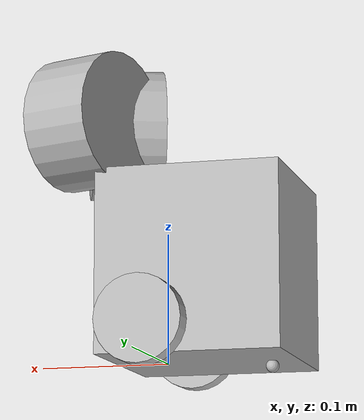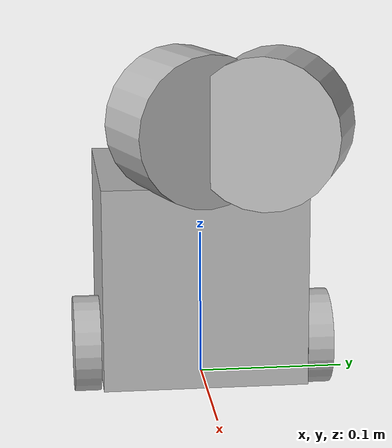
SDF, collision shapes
<?xml version="1.0" ?>
<sdf version="1.5">
  <model name="deliverybot">
    <pose>0.0 0.0 0.0 0.0 0.0 0.0</pose>

    <link name="base_footprint"/>

    <link name="base_link">

      <inertial>
        <pose>-0.032 0 0.070 0 0 0</pose>
        <inertia>
          <ixx>7.2397393e-01</ixx>
          <ixy>4.686399e-10</ixy>
          <ixz>-1.09525703e-08</ixz>
          <iyy>7.2397393e-01</iyy>
          <iyz>2.8582649e-09</iyz>
          <izz>6.53050163e-01</izz>
        </inertia>
        <mass>8.2573504e-01</mass>
      </inertial>

      <collision name="base_collision">
        <pose>-0.032 0 0.070 0 0 0</pose>
        <geometry>
          <box>
            <size>0.140 0.140 0.140</size>
          </box>
        </geometry>
      </collision>

      <visual name="base_visual">
        <pose>-0.032 0 0 0 0 0</pose>
        <geometry>
          <mesh>
            <uri>model://turtlebot3_common/meshes/burger_base.dae</uri>
            <scale>0.001 0.001 0.001</scale>
          </mesh>
        </geometry>
      </visual>
    </link>

    <link name="cam_left_link">
      <inertial>
        <pose>0.048 0.042 0.182 0.349 1.57 0</pose>
        <inertia>
          <ixx>0.001</ixx>
          <ixy>0.000</ixy>
          <ixz>0.000</ixz>
          <iyy>0.001</iyy>
          <iyz>0.000</iyz>
          <izz>0.001</izz>
        </inertia>
        <mass>0.114</mass>
      </inertial>
      <collision name="cam_left_collision">
        <pose>0.048 0.042 0.182 0.349 1.57 0</pose>
        <geometry>
          <cylinder>
            <radius>0.0508</radius>
            <length>0.055</length>
          </cylinder>
        </geometry>
      </collision>
      <visual name="cam_left_visual">
        <pose>0.036 0.03 0.182 -1.57 0 -2.3038</pose>
        <geometry>
          <mesh>
            <uri>model://deliverybot/d435.dae</uri>
            <scale>1 1 1</scale>
          </mesh>
        </geometry>
      </visual>
      <sensor name='camera_left' type='depth'>
        <pose>0.036 0.03 0.182 0 0 -0.733</pose>
        <camera name='cam_left'>
          <horizontal_fov>1.48702</horizontal_fov>
          <image>
            <width>640</width>
            <height>480</height>
          </image>
          <clip>
            <near>0.1</near>
            <far>100</far>
          </clip>
          <noise>
            <type>gaussian</type>
            <mean>0</mean>
            <stddev>0.1</stddev>
          </noise>
        </camera>
        <always_on>1</always_on>
        <update_rate>30</update_rate>
        <visualize>0</visualize>
        <plugin name="cam_left_controller" filename="libgazebo_ros_camera.so">
          <hack_baseline>0.07</hack_baseline>
          <frame_name>cam_left_link</frame_name>
        </plugin>
      </sensor>
    </link>

    <link name="cam_right_link">
      <inertial>
        <pose>0.036 -0.009 0.182 -0.3491 1.57 0</pose>
        <inertia>
          <ixx>0.001</ixx>
          <ixy>0.000</ixy>
          <ixz>0.000</ixz>
          <iyy>0.001</iyy>
          <iyz>0.000</iyz>
          <izz>0.001</izz>
        </inertia>
        <mass>0.114</mass>
      </inertial>
      <collision name="cam_right_collision">
        <pose>0.036 -0.009 0.182 -0.3491 1.57 0</pose>
        <geometry>
          <cylinder>
            <radius>0.0508</radius>
            <length>0.055</length>
          </cylinder>
        </geometry>
      </collision>
      <visual name="cam_right_visual">
        <pose>0.036 -0.03 0.182 -1.57 0 -0.8378</pose>
        <geometry>
          <mesh>
            <uri>model://deliverybot/d435.dae</uri>
            <scale>1 1 1</scale>
          </mesh>
        </geometry>
      </visual>
      <sensor name='camera_right' type='depth'>
        <pose>0.036 -0.03 0.182 0 0 0.733</pose>
        <camera name='cam_right'>
          <horizontal_fov>1.48702</horizontal_fov>
          <image>
            <width>640</width>
            <height>480</height>
          </image>
          <clip>
            <near>0.1</near>
            <far>100</far>
          </clip>
          <noise>
            <type>gaussian</type>
            <mean>0</mean>
            <stddev>0.1</stddev>
          </noise>
        </camera>
        <always_on>1</always_on>
        <update_rate>30</update_rate>
        <visualize>0</visualize>
        <plugin name="cam_right_controller" filename="libgazebo_ros_camera.so">
          <hack_baseline>0.07</hack_baseline>
          <frame_name>cam_right_link</frame_name>
        </plugin>
      </sensor>
    </link>

    <link name="wheel_left_link">

      <inertial>
        <pose>0 0.08 0.023 -1.57 0 0</pose>
        <inertia>
          <ixx>1.8158194e-03</ixx>
          <ixy>-9.3392e-12</ixy>
          <ixz>1.04909e-11</ixz>
          <iyy>3.2922126e-03</iyy>
          <iyz>5.75694e-11</iyz>
          <izz>1.8158194e-03</izz>
        </inertia>
        <mass>2.8498940e-02</mass>
      </inertial>

      <collision name="wheel_left_collision">
        <pose>0 0.08 0.023 -1.57 0 0</pose>
        <geometry>
          <cylinder>
            <radius>0.033</radius>
            <length>0.018</length>
          </cylinder>
        </geometry>
        <surface>
          <!-- This friction pamareter don't contain reliable data!! -->
          <friction>
            <ode>
              <mu>100000.0</mu>
              <mu2>100000.0</mu2>
              <fdir1>0 0 0</fdir1>
              <slip1>0.0</slip1>
              <slip2>0.0</slip2>
            </ode>
          </friction>
          <contact>
            <ode>
              <soft_cfm>0</soft_cfm>
              <soft_erp>0.2</soft_erp>
              <kp>1e+5</kp>
              <kd>1</kd>
              <max_vel>0.01</max_vel>
              <min_depth>0.001</min_depth>
            </ode>
          </contact>
        </surface>
      </collision>

      <visual name="wheel_left_visual">
        <pose>0 0.08 0.023 0 0 0</pose>
        <geometry>
          <mesh>
            <uri>model://turtlebot3_common/meshes/tire.dae</uri>
            <scale>0.001 0.001 0.001</scale>
          </mesh>
        </geometry>
      </visual>
    </link>

    <link name="wheel_right_link">

      <inertial>
        <pose>0.0 -0.08 0.023 -1.57 0 0</pose>
        <inertia>
          <ixx>1.8158194e-03</ixx>
          <ixy>-9.3392e-12</ixy>
          <ixz>1.04909e-11</ixz>
          <iyy>3.2922126e-03</iyy>
          <iyz>5.75694e-11</iyz>
          <izz>1.8158194e-03</izz>
        </inertia>
        <mass>2.8498940e-02</mass>
      </inertial>

      <collision name="wheel_right_collision">
        <pose>0.0 -0.08 0.023 -1.57 0 0</pose>
        <geometry>
          <cylinder>
            <radius>0.033</radius>
            <length>0.018</length>
          </cylinder>
        </geometry>
        <surface>
          <!-- This friction pamareter don't contain reliable data!! -->
          <friction>
            <ode>
              <mu>100000.0</mu>
              <mu2>100000.0</mu2>
              <fdir1>0 0 0</fdir1>
              <slip1>0.0</slip1>
              <slip2>0.0</slip2>
            </ode>
          </friction>
          <contact>
            <ode>
              <soft_cfm>0</soft_cfm>
              <soft_erp>0.2</soft_erp>
              <kp>1e+5</kp>
              <kd>1</kd>
              <max_vel>0.01</max_vel>
              <min_depth>0.001</min_depth>
            </ode>
          </contact>
        </surface>
      </collision>

      <visual name="wheel_right_visual">
        <pose>0.0 -0.08 0.023 0 0 0</pose>
        <geometry>
          <mesh>
            <uri>model://turtlebot3_common/meshes/tire.dae</uri>
            <scale>0.001 0.001 0.001</scale>
          </mesh>
        </geometry>
      </visual>
    </link>

    <link name='caster_back_link'>
      <pose>-0.081 0 -0.004 -1.57 0 0</pose>
      <inertial>
        <mass>0.005</mass>
        <inertia>
          <ixx>0.001</ixx>
          <ixy>0.000</ixy>
          <ixz>0.000</ixz>
          <iyy>0.001</iyy>
          <iyz>0.000</iyz>
          <izz>0.001</izz>
        </inertia>
      </inertial>
      <collision name='collision'>
        <geometry>
          <sphere>
            <radius>0.005000</radius>
          </sphere>
        </geometry>
        <surface>
          <contact>
            <ode>
              <soft_cfm>0</soft_cfm>
              <soft_erp>0.2</soft_erp>
              <kp>1e+5</kp>
              <kd>1</kd>
              <max_vel>0.01</max_vel>
              <min_depth>0.001</min_depth>
            </ode>
          </contact>
        </surface>
      </collision>
    </link>

    <joint name="base_joint" type="fixed">
      <parent>base_footprint</parent>
      <child>base_link</child>
      <pose>0.0 0.0 0.010 0 0 0</pose>
    </joint>

    <joint name="wheel_left_joint" type="revolute">
      <parent>base_link</parent>
      <child>wheel_left_link</child>
      <pose>0.0 0.08 0.023 -1.57 0 0</pose>
      <axis>
        <xyz>0 0 1</xyz>
      </axis>
    </joint>

    <joint name="wheel_right_joint" type="revolute">
      <parent>base_link</parent>
      <child>wheel_right_link</child>
      <pose>0.0 -0.08 0.023 -1.57 0 0</pose>
      <axis>
        <xyz>0 0 1</xyz>
      </axis>
    </joint>

    <joint name='caster_back_joint' type='ball'>
      <parent>base_link</parent>
      <child>caster_back_link</child>
    </joint>

  <joint name="cam_left_joint" type="fixed">
    <parent>base_link</parent>
    <child>cam_left_link</child>
    <pose>0.048 0.042 0.182 0 0 -0.733</pose>
    <axis>
      <xyz>0 0 0</xyz>
    </axis>
  </joint>

  <joint name="cam_right_joint" type="fixed">
    <parent>base_link</parent>
    <child>cam_right_link</child>
    <pose>0.036 -0.009 0.182 0 0 0.733</pose>
    <axis>
      <xyz>0 0 0</xyz>
    </axis>
  </joint>

    <plugin name="deliverybot_diff_drive" filename="libgazebo_ros_diff_drive.so">

      <update_rate>30</update_rate>

      <!-- wheels -->
      <left_joint>wheel_left_joint</left_joint>
      <right_joint>wheel_right_joint</right_joint>

      <!-- kinematics -->
      <wheel_separation>0.160</wheel_separation>
      <wheel_diameter>0.066</wheel_diameter>

      <!-- limits -->
      <max_wheel_torque>20</max_wheel_torque>
      <max_wheel_acceleration>1.0</max_wheel_acceleration>

      <command_topic>cmd_vel</command_topic>

      <!-- output -->
      <publish_odom>true</publish_odom>
      <publish_odom_tf>true</publish_odom_tf>
      <publish_wheel_tf>true</publish_wheel_tf>

      <odometry_topic>odom</odometry_topic>
      <odometry_frame>odom</odometry_frame>
      <robot_base_frame>base_footprint</robot_base_frame>

    </plugin>

    <plugin name="deliverybot_joint_state" filename="libgazebo_ros_joint_state_publisher.so">
      <ros>
        <remapping>~/out:=joint_states</remapping>
      </ros>
      <update_rate>30</update_rate>
      <joint_name>wheel_left_joint</joint_name>
      <joint_name>wheel_right_joint</joint_name>
    </plugin>
  </model>
</sdf>
